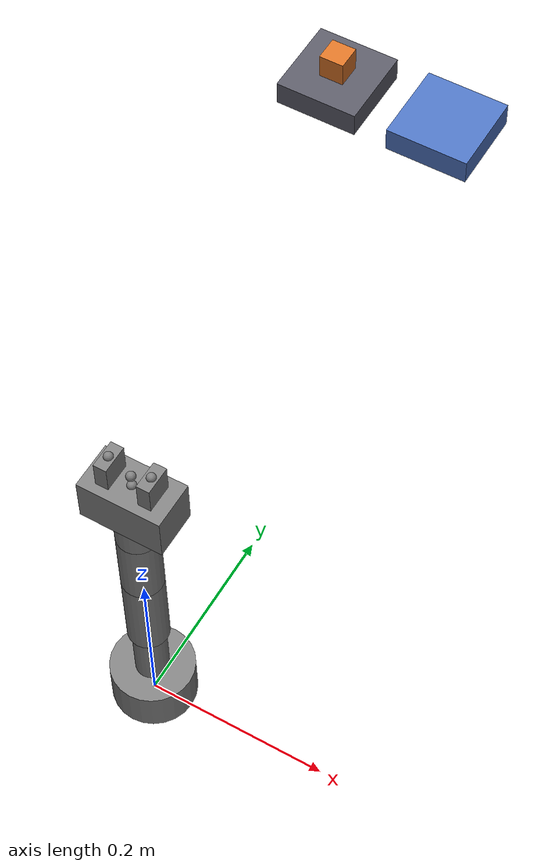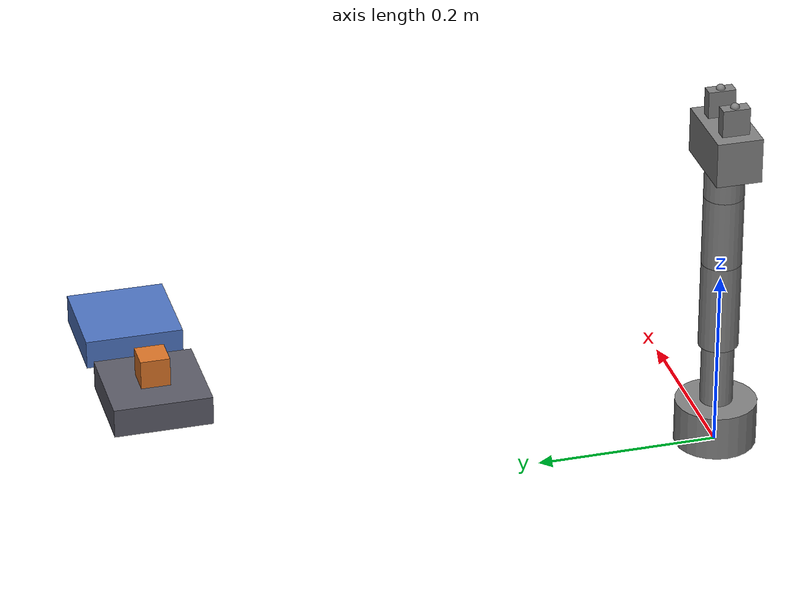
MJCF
<mujoco model="zoo_compact_arm">
  <compiler angle="radian" meshdir="C:\Users\hocke\GitHub\rigby-g07\any-robot\assets\general\zoo\zoo_compact_arm" texturedir="C:\Users\hocke\GitHub\rigby-g07\any-robot\assets\general\zoo\zoo_compact_arm" />

  <worldbody>
    <body name="base">
      <inertial pos="0 0 0.025" quat="0.5 0.5 -0.5 0.5" mass="0.9" diaginertia="0.00091125 0.00064313 0.00064313" />
      <geom size="0.045 0.025" pos="0 0 0.025" type="cylinder" />
      <site name="robot_base" pos="0 0 0" />
      <body name="link_0" pos="0 0 0.05">
        <inertial pos="0 0 0.035" mass="0.25" diaginertia="0.00012233 0.00012233 4.05e-05" />
        <joint name="joint_0" pos="0 0 0" axis="0 0 1" range="-2.85 2.85" actuatorfrcrange="-14 14" />
        <geom size="0.018 0.035" pos="0 0 0.035" type="cylinder" />
        <body name="link_1" pos="0 0 0.07">
          <inertial pos="0 0 0.05" mass="0.25" diaginertia="0.00023858 0.00023858 6.05e-05" />
          <joint name="joint_1" pos="0 0 0" axis="0 1 0" range="-2.85 2.85" actuatorfrcrange="-14 14" />
          <geom size="0.022 0.05" pos="0 0 0.05" type="cylinder" />
          <body name="link_2" pos="0 0 0.1">
            <inertial pos="0 0 0.04" mass="0.25" diaginertia="0.00016358 0.00016358 6.05e-05" />
            <joint name="joint_2" pos="0 0 0" axis="0 1 0" range="-2.85 2.85" actuatorfrcrange="-14 14" />
            <geom size="0.022 0.04" pos="0 0 0.04" type="cylinder" />
            <body name="link_3" pos="0 0 0.08">
              <inertial pos="0 0 0.0175" quat="0.5 0.5 -0.5 0.5" mass="0.25" diaginertia="6.05e-05 5.577e-05 5.577e-05" />
              <joint name="joint_3" pos="0 0 0" axis="0 1 0" range="-2.85 2.85" actuatorfrcrange="-14 14" />
              <geom size="0.022 0.0175" pos="0 0 0.0175" type="cylinder" />
              <body name="palm" pos="0 0 0.035">
                <inertial pos="0 0 0.025" quat="0.5 0.5 0.5 0.5" mass="0.35" diaginertia="0.00030917 0.00030917 0.00014583" />
                <geom size="0.045 0.025 0.025" pos="0 0 0.025" type="box" />
                <site name="palm_grasp_point" pos="0 0 0.065" />
                <site name="palm_grasp_center" pos="0 0 0.05" />
                <site name="palm_wrist" pos="0 0 0" />
                <body name="finger_left" pos="0.023 0 0.05">
                  <inertial pos="0 0 0.015" mass="0.06" diaginertia="9e-06 5.48e-06 5.48e-06" />
                  <joint name="grip_left" pos="0 0 0" axis="-1 0 0" type="slide" range="0 0.015" actuatorfrcrange="-8 8" />
                  <geom size="0.007 0.015 0.015" pos="0 0 0.015" type="box" />
                  <site name="palm_tip" pos="0 0 0.03" />
                  <site name="palm_contact_0" pos="0 0 0.03" />
                </body>
                <body name="finger_right" pos="-0.023 0 0.05">
                  <inertial pos="0 0 0.015" mass="0.06" diaginertia="9e-06 5.48e-06 5.48e-06" />
                  <joint name="grip_right" pos="0 0 0" axis="1 0 0" type="slide" range="0 0.015" actuatorfrcrange="-8 8" />
                  <geom size="0.007 0.015 0.015" pos="0 0 0.015" type="box" />
                  <site name="palm_contact_1" pos="0 0 0.03" />
                </body>
              </body>
            </body>
          </body>
        </body>
      </body>
    </body>
  <body name="env_fixture_bench" pos="-0.150000 0.650000 0.245000"><geom name="env_fixture_bench_geom" type="box" size="0.050000 0.050000 0.015000" rgba="0.3500 0.3500 0.4000 1.0000" solref="0.002 1" solimp="0.95 0.99 0.001" /></body><body name="env_fixture_platform" pos="-0.010000 0.650000 0.245000"><geom name="env_fixture_platform_geom" type="box" size="0.050000 0.050000 0.015000" rgba="0.3000 0.4500 0.7500 1.0000" solref="0.002 1" solimp="0.95 0.99 0.001" /></body><body name="scene_block" pos="-0.150000 0.650000 0.275000"><freejoint name="scene_block_free" /><geom name="scene_block_geom" type="box" size="0.015000 0.015000 0.015000" mass="0.008640" friction="1.400 0.03 0.001" rgba="0.8500 0.4500 0.1500 1.0000" condim="4" solref="0.002 1" solimp="0.95 0.99 0.001" priority="1" /><site name="scene_block_center" pos="0 0 0" size="0.002" /></body></worldbody>

  <actuator>
    <general name="joint_0_motor" joint="joint_0" ctrllimited="true" ctrlrange="-14 14" forcelimited="true" forcerange="-14 14" />
    <general name="joint_1_motor" joint="joint_1" ctrllimited="true" ctrlrange="-14 14" forcelimited="true" forcerange="-14 14" />
    <general name="joint_2_motor" joint="joint_2" ctrllimited="true" ctrlrange="-14 14" forcelimited="true" forcerange="-14 14" />
    <general name="joint_3_motor" joint="joint_3" ctrllimited="true" ctrlrange="-14 14" forcelimited="true" forcerange="-14 14" />
    <general name="grip_left_motor" joint="grip_left" ctrllimited="true" ctrlrange="-8 8" forcelimited="true" forcerange="-8 8" />
    <general name="grip_right_motor" joint="grip_right" ctrllimited="true" ctrlrange="-8 8" forcelimited="true" forcerange="-8 8" />
  </actuator>
</mujoco>
